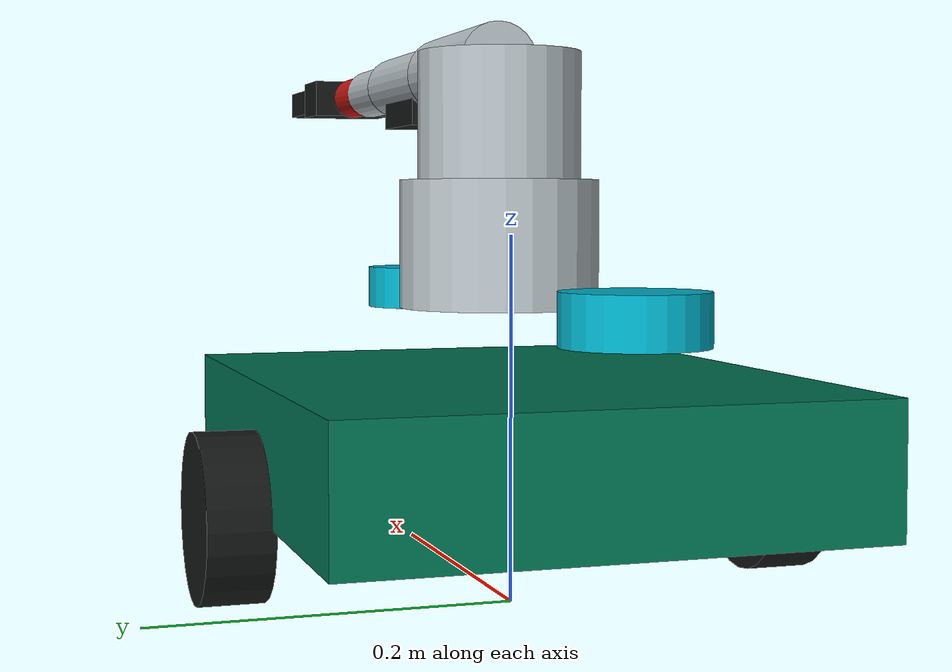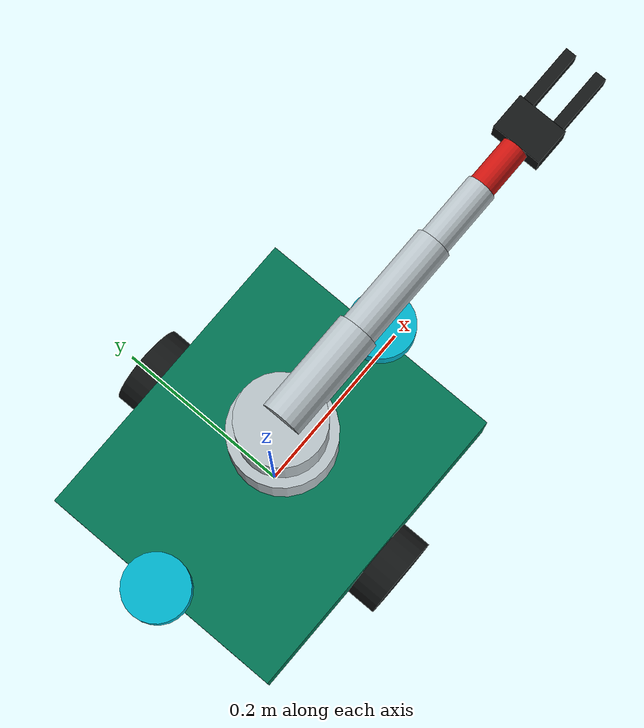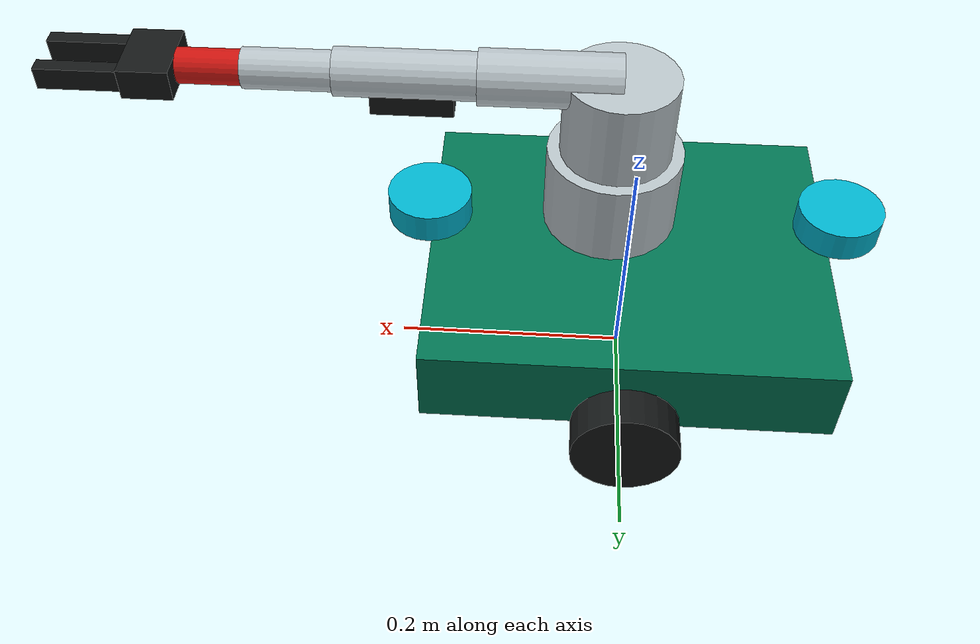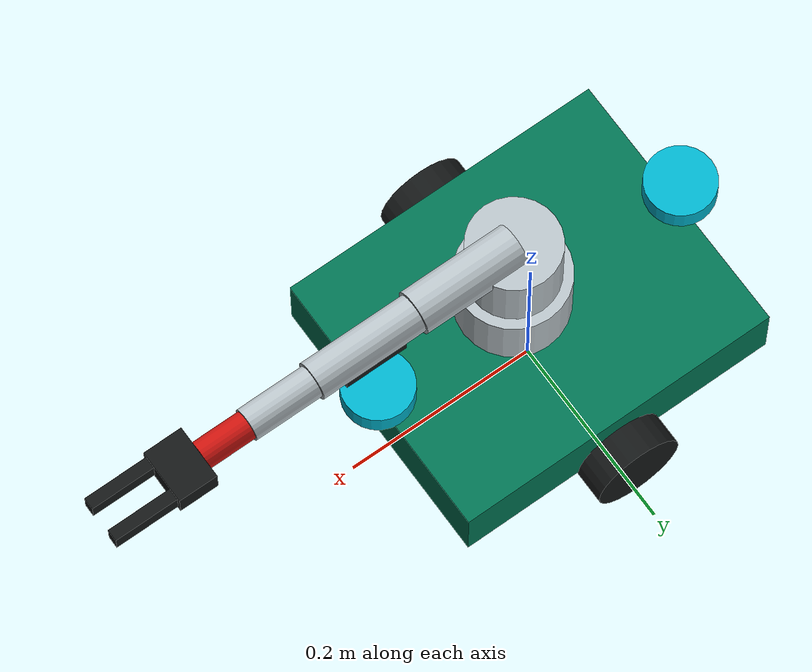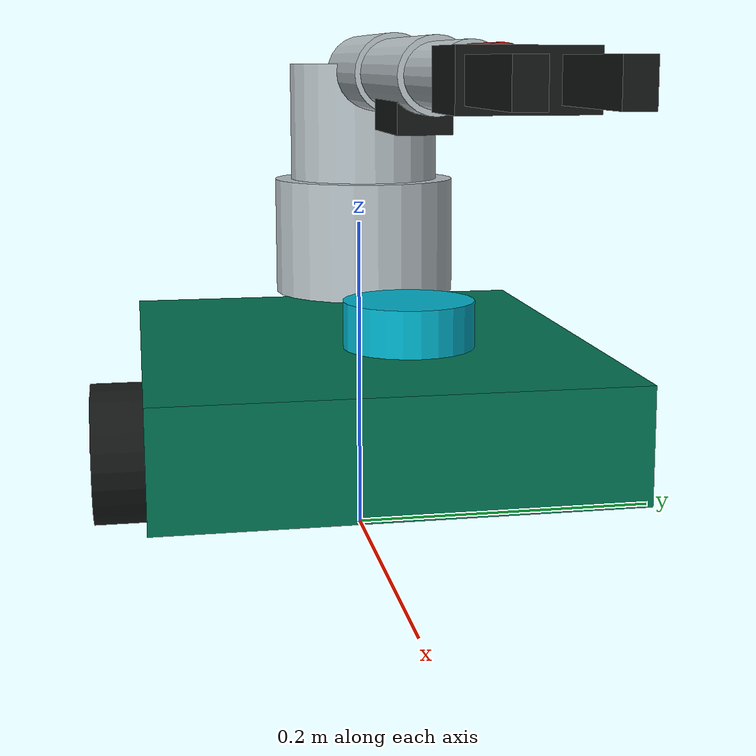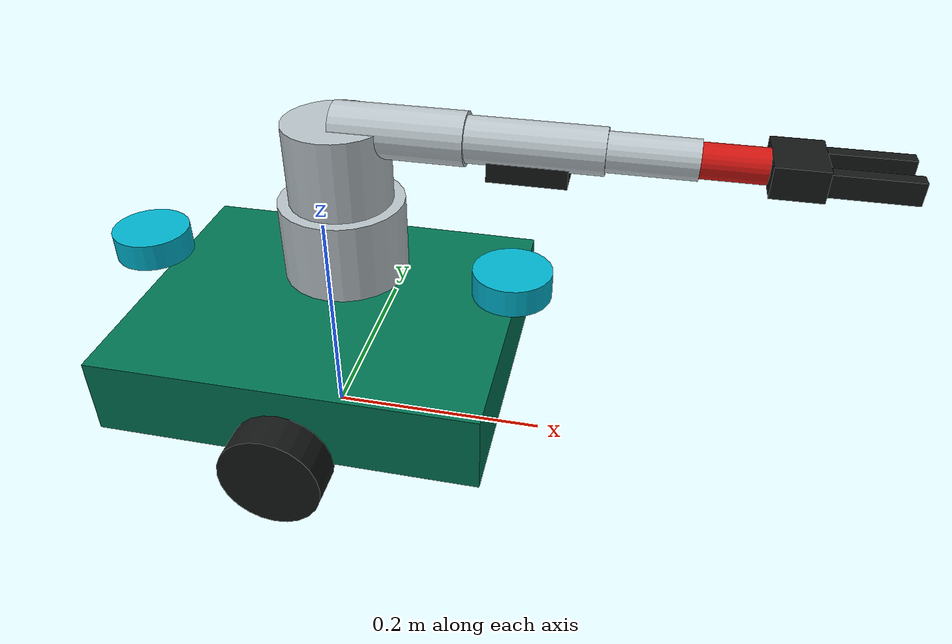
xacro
<?xml version="1.0"?>
<robot name="m3pro_teacher" xmlns:xacro="http://www.ros.org/wiki/xacro">
  <material name="body_green">
    <color rgba="0.0 0.45 0.32 1.0"/>
  </material>
  <material name="dark_gray">
    <color rgba="0.08 0.09 0.09 1.0"/>
  </material>
  <material name="sensor_cyan">
    <color rgba="0.0 0.7 0.8 1.0"/>
  </material>
  <material name="arm_silver">
    <color rgba="0.72 0.76 0.78 1.0"/>
  </material>
  <material name="warning_red">
    <color rgba="0.8 0.08 0.06 1.0"/>
  </material>

  <link name="base_footprint"/>

  <joint name="base_footprint_joint" type="fixed">
    <parent link="base_footprint"/>
    <child link="base_link"/>
    <origin xyz="0 0 0.055" rpy="0 0 0"/>
  </joint>

  <link name="base_link">
    <visual>
      <origin xyz="0 0 0.035" rpy="0 0 0"/>
      <geometry>
        <box size="0.34 0.28 0.07"/>
      </geometry>
      <material name="body_green"/>
    </visual>
    <collision>
      <origin xyz="0 0 0.035" rpy="0 0 0"/>
      <geometry>
        <box size="0.34 0.28 0.07"/>
      </geometry>
    </collision>
  </link>

  <xacro:macro name="wheel" params="name y">
    <link name="${name}">
      <visual>
        <origin xyz="0 0 0" rpy="${pi / 2} 0 0"/>
        <geometry>
          <cylinder radius="0.045" length="0.035"/>
        </geometry>
        <material name="dark_gray"/>
      </visual>
    </link>
    <joint name="${name}_joint" type="fixed">
      <parent link="base_link"/>
      <child link="${name}"/>
      <origin xyz="0 ${y} 0.0" rpy="0 0 0"/>
    </joint>
  </xacro:macro>

  <xacro:wheel name="left_wheel" y="0.155"/>
  <xacro:wheel name="right_wheel" y="-0.155"/>

  <link name="scan0_frame">
    <visual>
      <origin xyz="0 0 0" rpy="0 0 0"/>
      <geometry>
        <cylinder radius="0.035" length="0.025"/>
      </geometry>
      <material name="sensor_cyan"/>
    </visual>
  </link>
  <joint name="scan0_joint" type="fixed">
    <parent link="base_link"/>
    <child link="scan0_frame"/>
    <origin xyz="0.17 0 0.11" rpy="0 0 0"/>
  </joint>

  <link name="scan1_frame">
    <visual>
      <origin xyz="0 0 0" rpy="0 0 0"/>
      <geometry>
        <cylinder radius="0.035" length="0.025"/>
      </geometry>
      <material name="sensor_cyan"/>
    </visual>
  </link>
  <joint name="scan1_joint" type="fixed">
    <parent link="base_link"/>
    <child link="scan1_frame"/>
    <origin xyz="-0.17 0 0.11" rpy="0 0 ${pi}"/>
  </joint>

  <link name="camera_link">
    <visual>
      <origin xyz="0 0 0" rpy="0 0 0"/>
      <geometry>
        <box size="0.065 0.028 0.038"/>
      </geometry>
      <material name="dark_gray"/>
    </visual>
  </link>
  <joint name="camera_joint" type="fixed">
    <parent link="base_link"/>
    <child link="camera_link"/>
    <origin xyz="0.18 0 0.23" rpy="0 0 0"/>
  </joint>

  <link name="camera_color_optical_frame"/>
  <joint name="camera_optical_joint" type="fixed">
    <parent link="camera_link"/>
    <child link="camera_color_optical_frame"/>
    <origin xyz="0.025 0 0" rpy="${-pi / 2} 0 ${-pi / 2}"/>
  </joint>

  <link name="arm_base_link">
    <visual>
      <origin xyz="0 0 0.035" rpy="0 0 0"/>
      <geometry>
        <cylinder radius="0.055" length="0.07"/>
      </geometry>
      <material name="arm_silver"/>
    </visual>
  </link>
  <joint name="arm_mount_joint" type="fixed">
    <parent link="base_link"/>
    <child link="arm_base_link"/>
    <origin xyz="0.02 0 0.105" rpy="0 0 0"/>
  </joint>

  <link name="shoulder_pan_link">
    <visual>
      <origin xyz="0 0 0.035" rpy="0 0 0"/>
      <geometry>
        <cylinder radius="0.045" length="0.07"/>
      </geometry>
      <material name="arm_silver"/>
    </visual>
  </link>
  <joint name="base_yaw_joint" type="revolute">
    <parent link="arm_base_link"/>
    <child link="shoulder_pan_link"/>
    <origin xyz="0 0 0.07" rpy="0 0 0"/>
    <axis xyz="0 0 1"/>
    <limit lower="-1.57" upper="1.57" effort="4.0" velocity="1.0"/>
  </joint>

  <link name="upper_arm_link">
    <visual>
      <origin xyz="0.055 0 0" rpy="0 ${pi / 2} 0"/>
      <geometry>
        <cylinder radius="0.022" length="0.11"/>
      </geometry>
      <material name="arm_silver"/>
    </visual>
  </link>
  <joint name="shoulder_joint" type="revolute">
    <parent link="shoulder_pan_link"/>
    <child link="upper_arm_link"/>
    <origin xyz="0 0 0.065" rpy="0 0 0"/>
    <axis xyz="0 1 0"/>
    <limit lower="-1.57" upper="1.57" effort="4.0" velocity="1.0"/>
  </joint>

  <link name="forearm_link">
    <visual>
      <origin xyz="0.055 0 0" rpy="0 ${pi / 2} 0"/>
      <geometry>
        <cylinder radius="0.019" length="0.11"/>
      </geometry>
      <material name="arm_silver"/>
    </visual>
  </link>
  <joint name="elbow_joint" type="revolute">
    <parent link="upper_arm_link"/>
    <child link="forearm_link"/>
    <origin xyz="0.11 0 0" rpy="0 0 0"/>
    <axis xyz="0 1 0"/>
    <limit lower="-1.57" upper="1.57" effort="4.0" velocity="1.0"/>
  </joint>

  <link name="wrist_pitch_link">
    <visual>
      <origin xyz="0.035 0 0" rpy="0 ${pi / 2} 0"/>
      <geometry>
        <cylinder radius="0.016" length="0.07"/>
      </geometry>
      <material name="arm_silver"/>
    </visual>
  </link>
  <joint name="wrist_pitch_joint" type="revolute">
    <parent link="forearm_link"/>
    <child link="wrist_pitch_link"/>
    <origin xyz="0.11 0 0" rpy="0 0 0"/>
    <axis xyz="0 1 0"/>
    <limit lower="-1.57" upper="1.57" effort="4.0" velocity="1.0"/>
  </joint>

  <link name="wrist_roll_link">
    <visual>
      <origin xyz="0.025 0 0" rpy="0 ${pi / 2} 0"/>
      <geometry>
        <cylinder radius="0.014" length="0.05"/>
      </geometry>
      <material name="warning_red"/>
    </visual>
  </link>
  <joint name="wrist_roll_joint" type="revolute">
    <parent link="wrist_pitch_link"/>
    <child link="wrist_roll_link"/>
    <origin xyz="0.07 0 0" rpy="0 0 0"/>
    <axis xyz="1 0 0"/>
    <limit lower="-1.57" upper="1.57" effort="2.0" velocity="1.0"/>
  </joint>

  <link name="gripper_palm_link">
    <visual>
      <origin xyz="0.02 0 0" rpy="0 0 0"/>
      <geometry>
        <box size="0.04 0.055 0.025"/>
      </geometry>
      <material name="dark_gray"/>
    </visual>
  </link>
  <joint name="gripper_palm_joint" type="fixed">
    <parent link="wrist_roll_link"/>
    <child link="gripper_palm_link"/>
    <origin xyz="0.05 0 0" rpy="0 0 0"/>
  </joint>

  <link name="left_finger_link">
    <visual>
      <origin xyz="0.035 0 0" rpy="0 0 0"/>
      <geometry>
        <box size="0.07 0.012 0.018"/>
      </geometry>
      <material name="dark_gray"/>
    </visual>
  </link>
  <joint name="left_finger_joint" type="prismatic">
    <parent link="gripper_palm_link"/>
    <child link="left_finger_link"/>
    <origin xyz="0.035 0.018 0" rpy="0 0 0"/>
    <axis xyz="0 1 0"/>
    <limit lower="0.0" upper="0.04" effort="1.0" velocity="0.1"/>
  </joint>

  <link name="right_finger_link">
    <visual>
      <origin xyz="0.035 0 0" rpy="0 0 0"/>
      <geometry>
        <box size="0.07 0.012 0.018"/>
      </geometry>
      <material name="dark_gray"/>
    </visual>
  </link>
  <joint name="right_finger_joint" type="prismatic">
    <parent link="gripper_palm_link"/>
    <child link="right_finger_link"/>
    <origin xyz="0.035 -0.018 0" rpy="0 0 0"/>
    <axis xyz="0 -1 0"/>
    <limit lower="0.0" upper="0.04" effort="1.0" velocity="0.1"/>
  </joint>
</robot>
